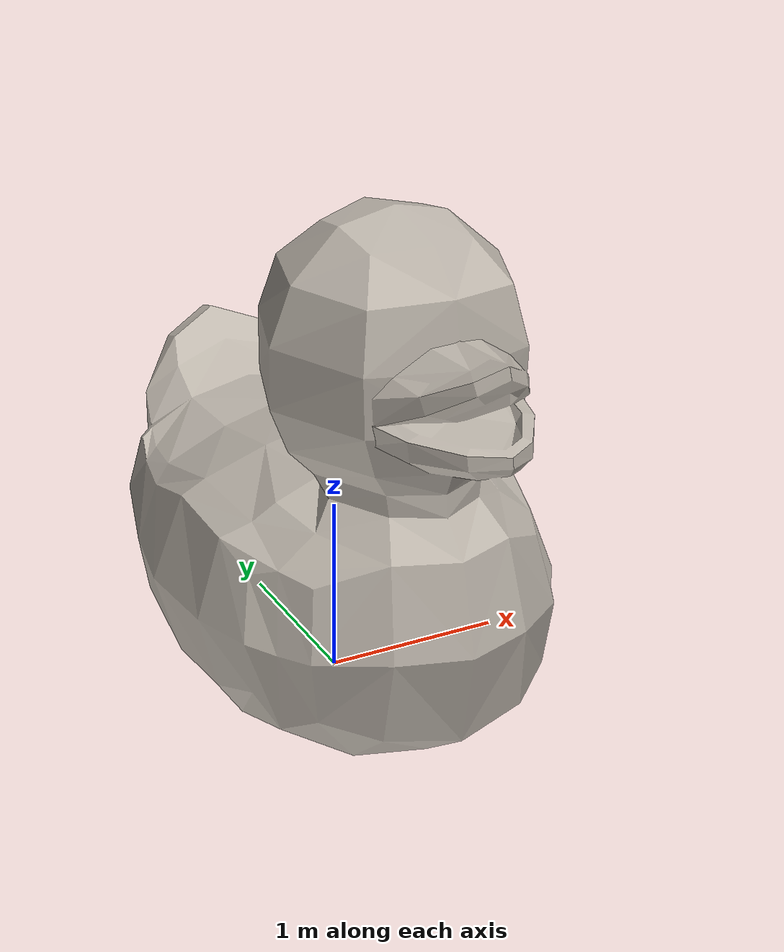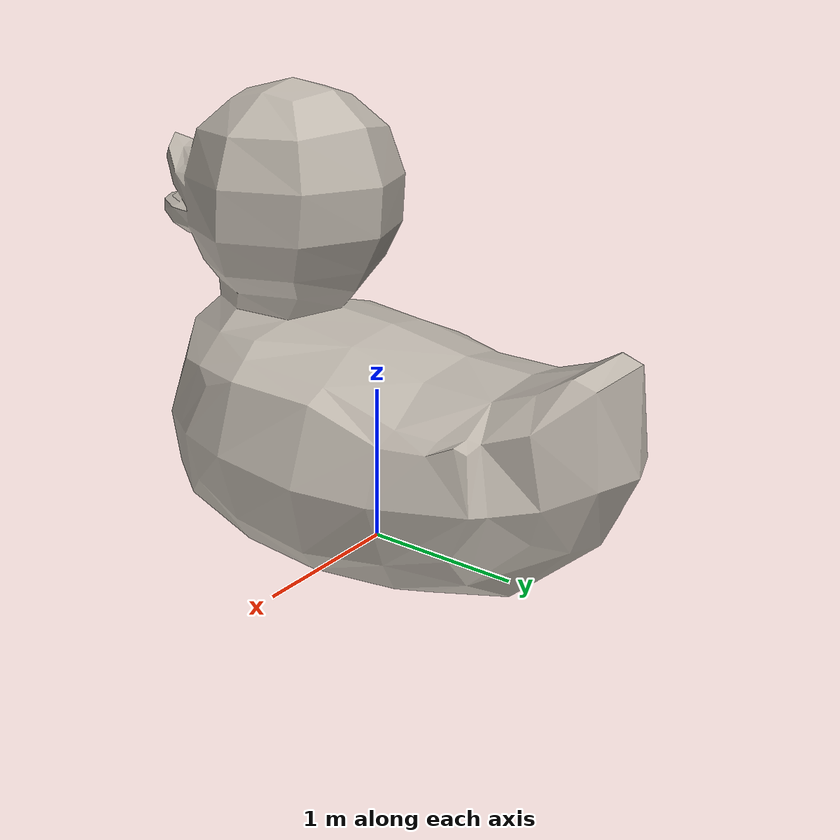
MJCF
<mujoco model="huge_rubber_duck">
  <compiler angle="degree"/>
  <asset>
    <texture name="rubber_duck_tex" type="2d" file="RubberDuck_BaseColor.png"/>
    <material name="rubber_duck_mat" texture="rubber_duck_tex"/>
    <mesh name="rubber_duck_mesh" file="RubberDuck.obj" scale="0.5 0.5 0.5"/>
  </asset>
  <worldbody>
    <body name="baseLink">
      <geom type="mesh" mesh="rubber_duck_mesh" material="rubber_duck_mat" mass="2.5"
            euler="90 0 0" friction="0.9 0.5 0.05"/>
    </body>
  </worldbody>
</mujoco>
